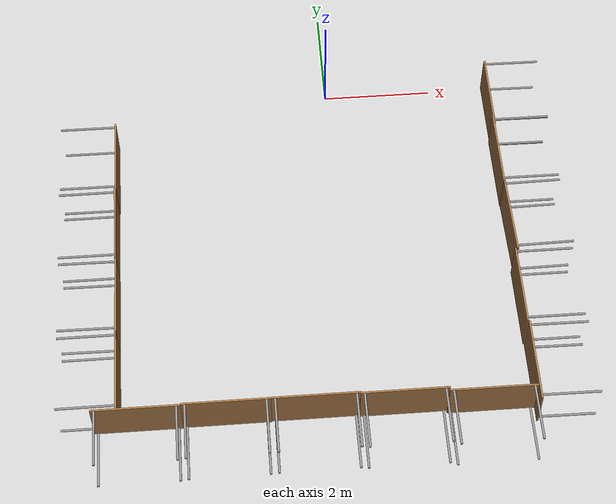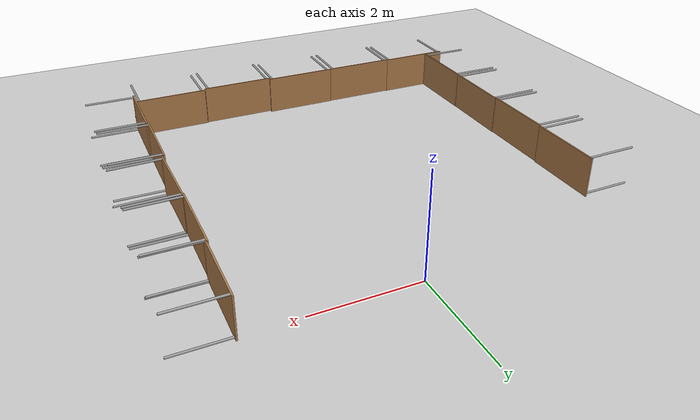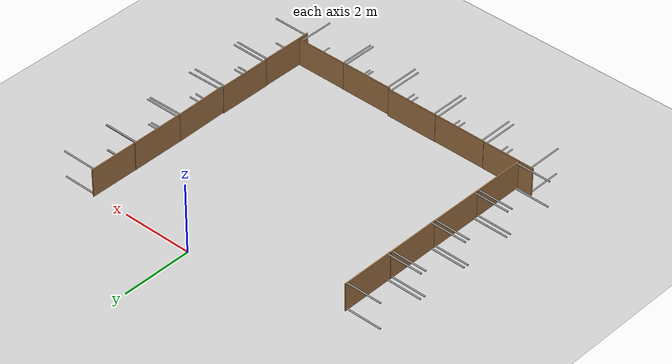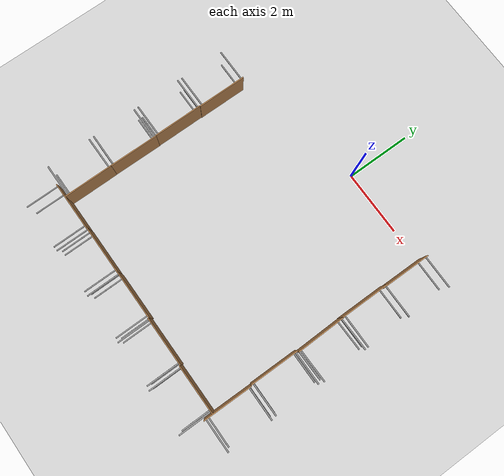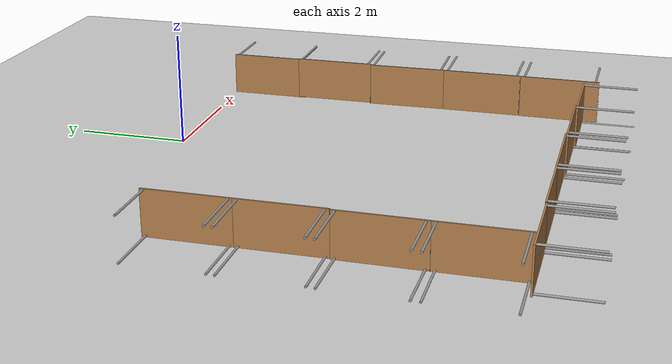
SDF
<sdf version="1.6">
 <world name="default">
  <model name="ground_plane">
   <static>1</static>
   <link name="link">
    <collision name="collision">
     <geometry><plane><normal>0 0 1</normal><size>100 100</size></plane></geometry>
     <surface><friction><ode><mu>100</mu><mu2>50</mu2></ode></friction></surface>
    </collision>
    <visual name="visual">
     <cast_shadows>0</cast_shadows>
     <geometry><plane><normal>0 0 1</normal><size>100 100</size></plane></geometry>
     <material>
      <script><uri>file://media/materials/scripts/gazebo.material</uri><name>Gazebo/Grey</name></script>
     </material>
    </visual>
    <velocity_decay><linear>0</linear><angular>0</angular></velocity_decay>
   </link>
  </model>
  <model name="table_8">
   <static>1</static>
   <link name="link">
    <collision name="surface">
     <pose>0 0 1 0 -0 0</pose>
     <geometry><box><size>1.5 0.8 0.03</size></box></geometry>
     <surface><friction><ode><mu>0.6</mu><mu2>0.6</mu2></ode></friction></surface>
    </collision>
    <visual name="visual1">
     <pose>0 0 1 0 -0 0</pose>
     <geometry><box><size>1.5 0.8 0.03</size></box></geometry>
     <material>
      <script><uri>file://media/materials/scripts/gazebo.material</uri><name>Gazebo/Wood</name></script>
     </material>
    </visual>
    <collision name="front_left_leg">
     <pose>0.68 0.38 0.5 0 -0 0</pose>
     <geometry><cylinder><radius>0.02</radius><length>1</length></cylinder></geometry>
    </collision>
    <visual name="front_left_leg">
     <pose>0.68 0.38 0.5 0 -0 0</pose>
     <geometry><cylinder><radius>0.02</radius><length>1</length></cylinder></geometry>
     <material>
      <script><uri>file://media/materials/scripts/gazebo.material</uri><name>Gazebo/Grey</name></script>
     </material>
    </visual>
    <collision name="front_right_leg">
     <pose>0.68 -0.38 0.5 0 -0 0</pose>
     <geometry><cylinder><radius>0.02</radius><length>1</length></cylinder></geometry>
    </collision>
    <visual name="front_right_leg">
     <pose>0.68 -0.38 0.5 0 -0 0</pose>
     <geometry><cylinder><radius>0.02</radius><length>1</length></cylinder></geometry>
     <material>
      <script><uri>file://media/materials/scripts/gazebo.material</uri><name>Gazebo/Grey</name></script>
     </material>
    </visual>
    <collision name="back_right_leg">
     <pose>-0.68 -0.38 0.5 0 -0 0</pose>
     <geometry><cylinder><radius>0.02</radius><length>1</length></cylinder></geometry>
    </collision>
    <visual name="back_right_leg">
     <pose>-0.68 -0.38 0.5 0 -0 0</pose>
     <geometry><cylinder><radius>0.02</radius><length>1</length></cylinder></geometry>
     <material>
      <script><uri>file://media/materials/scripts/gazebo.material</uri><name>Gazebo/Grey</name></script>
     </material>
    </visual>
    <collision name="back_left_leg">
     <pose>-0.68 0.38 0.5 0 -0 0</pose>
     <geometry><cylinder><radius>0.02</radius><length>1</length></cylinder></geometry>
    </collision>
    <visual name="back_left_leg">
     <pose>-0.68 0.38 0.5 0 -0 0</pose>
     <geometry><cylinder><radius>0.02</radius><length>1</length></cylinder></geometry>
     <material>
      <script><uri>file://media/materials/scripts/gazebo.material</uri><name>Gazebo/Grey</name></script>
     </material>
    </visual>
    <velocity_decay><linear>0</linear><angular>0</angular></velocity_decay>
   </link>
   <pose>4.04656 -0.698243 0.39274 1.5671 -6.2e-05 -1.57612</pose>
  </model>
  <model name="table_9">
   <static>1</static>
   <link name="link">
    <collision name="surface">
     <pose>0 0 1 0 -0 0</pose>
     <geometry><box><size>1.5 0.8 0.03</size></box></geometry>
     <surface><friction><ode><mu>0.6</mu><mu2>0.6</mu2></ode></friction></surface>
    </collision>
    <visual name="visual1">
     <pose>0 0 1 0 -0 0</pose>
     <geometry><box><size>1.5 0.8 0.03</size></box></geometry>
     <material>
      <script><uri>file://media/materials/scripts/gazebo.material</uri><name>Gazebo/Wood</name></script>
     </material>
    </visual>
    <collision name="front_left_leg">
     <pose>0.68 0.38 0.5 0 -0 0</pose>
     <geometry><cylinder><radius>0.02</radius><length>1</length></cylinder></geometry>
    </collision>
    <visual name="front_left_leg">
     <pose>0.68 0.38 0.5 0 -0 0</pose>
     <geometry><cylinder><radius>0.02</radius><length>1</length></cylinder></geometry>
     <material>
      <script><uri>file://media/materials/scripts/gazebo.material</uri><name>Gazebo/Grey</name></script>
     </material>
    </visual>
    <collision name="front_right_leg">
     <pose>0.68 -0.38 0.5 0 -0 0</pose>
     <geometry><cylinder><radius>0.02</radius><length>1</length></cylinder></geometry>
    </collision>
    <visual name="front_right_leg">
     <pose>0.68 -0.38 0.5 0 -0 0</pose>
     <geometry><cylinder><radius>0.02</radius><length>1</length></cylinder></geometry>
     <material>
      <script><uri>file://media/materials/scripts/gazebo.material</uri><name>Gazebo/Grey</name></script>
     </material>
    </visual>
    <collision name="back_right_leg">
     <pose>-0.68 -0.38 0.5 0 -0 0</pose>
     <geometry><cylinder><radius>0.02</radius><length>1</length></cylinder></geometry>
    </collision>
    <visual name="back_right_leg">
     <pose>-0.68 -0.38 0.5 0 -0 0</pose>
     <geometry><cylinder><radius>0.02</radius><length>1</length></cylinder></geometry>
     <material>
      <script><uri>file://media/materials/scripts/gazebo.material</uri><name>Gazebo/Grey</name></script>
     </material>
    </visual>
    <collision name="back_left_leg">
     <pose>-0.68 0.38 0.5 0 -0 0</pose>
     <geometry><cylinder><radius>0.02</radius><length>1</length></cylinder></geometry>
    </collision>
    <visual name="back_left_leg">
     <pose>-0.68 0.38 0.5 0 -0 0</pose>
     <geometry><cylinder><radius>0.02</radius><length>1</length></cylinder></geometry>
     <material>
      <script><uri>file://media/materials/scripts/gazebo.material</uri><name>Gazebo/Grey</name></script>
     </material>
    </visual>
    <velocity_decay><linear>0</linear><angular>0</angular></velocity_decay>
   </link>
   <pose>4.02468 -2.05884 0.410726 1.56766 -0 -1.57067</pose>
  </model>
  <model name="table_10">
   <static>1</static>
   <link name="link">
    <collision name="surface">
     <pose>0 0 1 0 -0 0</pose>
     <geometry><box><size>1.5 0.8 0.03</size></box></geometry>
     <surface><friction><ode><mu>0.6</mu><mu2>0.6</mu2></ode></friction></surface>
    </collision>
    <visual name="visual1">
     <pose>0 0 1 0 -0 0</pose>
     <geometry><box><size>1.5 0.8 0.03</size></box></geometry>
     <material>
      <script><uri>file://media/materials/scripts/gazebo.material</uri><name>Gazebo/Wood</name></script>
     </material>
    </visual>
    <collision name="front_left_leg">
     <pose>0.68 0.38 0.5 0 -0 0</pose>
     <geometry><cylinder><radius>0.02</radius><length>1</length></cylinder></geometry>
    </collision>
    <visual name="front_left_leg">
     <pose>0.68 0.38 0.5 0 -0 0</pose>
     <geometry><cylinder><radius>0.02</radius><length>1</length></cylinder></geometry>
     <material>
      <script><uri>file://media/materials/scripts/gazebo.material</uri><name>Gazebo/Grey</name></script>
     </material>
    </visual>
    <collision name="front_right_leg">
     <pose>0.68 -0.38 0.5 0 -0 0</pose>
     <geometry><cylinder><radius>0.02</radius><length>1</length></cylinder></geometry>
    </collision>
    <visual name="front_right_leg">
     <pose>0.68 -0.38 0.5 0 -0 0</pose>
     <geometry><cylinder><radius>0.02</radius><length>1</length></cylinder></geometry>
     <material>
      <script><uri>file://media/materials/scripts/gazebo.material</uri><name>Gazebo/Grey</name></script>
     </material>
    </visual>
    <collision name="back_right_leg">
     <pose>-0.68 -0.38 0.5 0 -0 0</pose>
     <geometry><cylinder><radius>0.02</radius><length>1</length></cylinder></geometry>
    </collision>
    <visual name="back_right_leg">
     <pose>-0.68 -0.38 0.5 0 -0 0</pose>
     <geometry><cylinder><radius>0.02</radius><length>1</length></cylinder></geometry>
     <material>
      <script><uri>file://media/materials/scripts/gazebo.material</uri><name>Gazebo/Grey</name></script>
     </material>
    </visual>
    <collision name="back_left_leg">
     <pose>-0.68 0.38 0.5 0 -0 0</pose>
     <geometry><cylinder><radius>0.02</radius><length>1</length></cylinder></geometry>
    </collision>
    <visual name="back_left_leg">
     <pose>-0.68 0.38 0.5 0 -0 0</pose>
     <geometry><cylinder><radius>0.02</radius><length>1</length></cylinder></geometry>
     <material>
      <script><uri>file://media/materials/scripts/gazebo.material</uri><name>Gazebo/Grey</name></script>
     </material>
    </visual>
    <velocity_decay><linear>0</linear><angular>0</angular></velocity_decay>
   </link>
   <pose>4.04909 -3.51998 0.39506 1.56955 -0 -1.55255</pose>
  </model>
  <model name="table_11">
   <static>1</static>
   <link name="link">
    <collision name="surface">
     <pose>0 0 1 0 -0 0</pose>
     <geometry><box><size>1.5 0.8 0.03</size></box></geometry>
     <surface><friction><ode><mu>0.6</mu><mu2>0.6</mu2></ode></friction></surface>
    </collision>
    <visual name="visual1">
     <pose>0 0 1 0 -0 0</pose>
     <geometry><box><size>1.5 0.8 0.03</size></box></geometry>
     <material>
      <script><uri>file://media/materials/scripts/gazebo.material</uri><name>Gazebo/Wood</name></script>
     </material>
    </visual>
    <collision name="front_left_leg">
     <pose>0.68 0.38 0.5 0 -0 0</pose>
     <geometry><cylinder><radius>0.02</radius><length>1</length></cylinder></geometry>
    </collision>
    <visual name="front_left_leg">
     <pose>0.68 0.38 0.5 0 -0 0</pose>
     <geometry><cylinder><radius>0.02</radius><length>1</length></cylinder></geometry>
     <material>
      <script><uri>file://media/materials/scripts/gazebo.material</uri><name>Gazebo/Grey</name></script>
     </material>
    </visual>
    <collision name="front_right_leg">
     <pose>0.68 -0.38 0.5 0 -0 0</pose>
     <geometry><cylinder><radius>0.02</radius><length>1</length></cylinder></geometry>
    </collision>
    <visual name="front_right_leg">
     <pose>0.68 -0.38 0.5 0 -0 0</pose>
     <geometry><cylinder><radius>0.02</radius><length>1</length></cylinder></geometry>
     <material>
      <script><uri>file://media/materials/scripts/gazebo.material</uri><name>Gazebo/Grey</name></script>
     </material>
    </visual>
    <collision name="back_right_leg">
     <pose>-0.68 -0.38 0.5 0 -0 0</pose>
     <geometry><cylinder><radius>0.02</radius><length>1</length></cylinder></geometry>
    </collision>
    <visual name="back_right_leg">
     <pose>-0.68 -0.38 0.5 0 -0 0</pose>
     <geometry><cylinder><radius>0.02</radius><length>1</length></cylinder></geometry>
     <material>
      <script><uri>file://media/materials/scripts/gazebo.material</uri><name>Gazebo/Grey</name></script>
     </material>
    </visual>
    <collision name="back_left_leg">
     <pose>-0.68 0.38 0.5 0 -0 0</pose>
     <geometry><cylinder><radius>0.02</radius><length>1</length></cylinder></geometry>
    </collision>
    <visual name="back_left_leg">
     <pose>-0.68 0.38 0.5 0 -0 0</pose>
     <geometry><cylinder><radius>0.02</radius><length>1</length></cylinder></geometry>
     <material>
      <script><uri>file://media/materials/scripts/gazebo.material</uri><name>Gazebo/Grey</name></script>
     </material>
    </visual>
    <velocity_decay><linear>0</linear><angular>0</angular></velocity_decay>
   </link>
   <pose>4.01779 -5.04411 0.415479 1.57516 -0 -1.57394</pose>
  </model>
  <model name="table_12">
   <static>1</static>
   <link name="link">
    <collision name="surface">
     <pose>0 0 1 0 -0 0</pose>
     <geometry><box><size>1.5 0.8 0.03</size></box></geometry>
     <surface><friction><ode><mu>0.6</mu><mu2>0.6</mu2></ode></friction></surface>
    </collision>
    <visual name="visual1">
     <pose>0 0 1 0 -0 0</pose>
     <geometry><box><size>1.5 0.8 0.03</size></box></geometry>
     <material>
      <script><uri>file://media/materials/scripts/gazebo.material</uri><name>Gazebo/Wood</name></script>
     </material>
    </visual>
    <collision name="front_left_leg">
     <pose>0.68 0.38 0.5 0 -0 0</pose>
     <geometry><cylinder><radius>0.02</radius><length>1</length></cylinder></geometry>
    </collision>
    <visual name="front_left_leg">
     <pose>0.68 0.38 0.5 0 -0 0</pose>
     <geometry><cylinder><radius>0.02</radius><length>1</length></cylinder></geometry>
     <material>
      <script><uri>file://media/materials/scripts/gazebo.material</uri><name>Gazebo/Grey</name></script>
     </material>
    </visual>
    <collision name="front_right_leg">
     <pose>0.68 -0.38 0.5 0 -0 0</pose>
     <geometry><cylinder><radius>0.02</radius><length>1</length></cylinder></geometry>
    </collision>
    <visual name="front_right_leg">
     <pose>0.68 -0.38 0.5 0 -0 0</pose>
     <geometry><cylinder><radius>0.02</radius><length>1</length></cylinder></geometry>
     <material>
      <script><uri>file://media/materials/scripts/gazebo.material</uri><name>Gazebo/Grey</name></script>
     </material>
    </visual>
    <collision name="back_right_leg">
     <pose>-0.68 -0.38 0.5 0 -0 0</pose>
     <geometry><cylinder><radius>0.02</radius><length>1</length></cylinder></geometry>
    </collision>
    <visual name="back_right_leg">
     <pose>-0.68 -0.38 0.5 0 -0 0</pose>
     <geometry><cylinder><radius>0.02</radius><length>1</length></cylinder></geometry>
     <material>
      <script><uri>file://media/materials/scripts/gazebo.material</uri><name>Gazebo/Grey</name></script>
     </material>
    </visual>
    <collision name="back_left_leg">
     <pose>-0.68 0.38 0.5 0 -0 0</pose>
     <geometry><cylinder><radius>0.02</radius><length>1</length></cylinder></geometry>
    </collision>
    <visual name="back_left_leg">
     <pose>-0.68 0.38 0.5 0 -0 0</pose>
     <geometry><cylinder><radius>0.02</radius><length>1</length></cylinder></geometry>
     <material>
      <script><uri>file://media/materials/scripts/gazebo.material</uri><name>Gazebo/Grey</name></script>
     </material>
    </visual>
    <velocity_decay><linear>0</linear><angular>0</angular></velocity_decay>
   </link>
   <pose>4.03351 -6.5551 0.399481 1.56946 -0 -1.57791</pose>
  </model>
  <model name="table_13">
   <static>1</static>
   <link name="link">
    <collision name="surface">
     <pose>0 0 1 0 -0 0</pose>
     <geometry><box><size>1.5 0.8 0.03</size></box></geometry>
     <surface><friction><ode><mu>0.6</mu><mu2>0.6</mu2></ode></friction></surface>
    </collision>
    <visual name="visual1">
     <pose>0 0 1 0 -0 0</pose>
     <geometry><box><size>1.5 0.8 0.03</size></box></geometry>
     <material>
      <script><uri>file://media/materials/scripts/gazebo.material</uri><name>Gazebo/Wood</name></script>
     </material>
    </visual>
    <collision name="front_left_leg">
     <pose>0.68 0.38 0.5 0 -0 0</pose>
     <geometry><cylinder><radius>0.02</radius><length>1</length></cylinder></geometry>
    </collision>
    <visual name="front_left_leg">
     <pose>0.68 0.38 0.5 0 -0 0</pose>
     <geometry><cylinder><radius>0.02</radius><length>1</length></cylinder></geometry>
     <material>
      <script><uri>file://media/materials/scripts/gazebo.material</uri><name>Gazebo/Grey</name></script>
     </material>
    </visual>
    <collision name="front_right_leg">
     <pose>0.68 -0.38 0.5 0 -0 0</pose>
     <geometry><cylinder><radius>0.02</radius><length>1</length></cylinder></geometry>
    </collision>
    <visual name="front_right_leg">
     <pose>0.68 -0.38 0.5 0 -0 0</pose>
     <geometry><cylinder><radius>0.02</radius><length>1</length></cylinder></geometry>
     <material>
      <script><uri>file://media/materials/scripts/gazebo.material</uri><name>Gazebo/Grey</name></script>
     </material>
    </visual>
    <collision name="back_right_leg">
     <pose>-0.68 -0.38 0.5 0 -0 0</pose>
     <geometry><cylinder><radius>0.02</radius><length>1</length></cylinder></geometry>
    </collision>
    <visual name="back_right_leg">
     <pose>-0.68 -0.38 0.5 0 -0 0</pose>
     <geometry><cylinder><radius>0.02</radius><length>1</length></cylinder></geometry>
     <material>
      <script><uri>file://media/materials/scripts/gazebo.material</uri><name>Gazebo/Grey</name></script>
     </material>
    </visual>
    <collision name="back_left_leg">
     <pose>-0.68 0.38 0.5 0 -0 0</pose>
     <geometry><cylinder><radius>0.02</radius><length>1</length></cylinder></geometry>
    </collision>
    <visual name="back_left_leg">
     <pose>-0.68 0.38 0.5 0 -0 0</pose>
     <geometry><cylinder><radius>0.02</radius><length>1</length></cylinder></geometry>
     <material>
      <script><uri>file://media/materials/scripts/gazebo.material</uri><name>Gazebo/Grey</name></script>
     </material>
    </visual>
    <velocity_decay><linear>0</linear><angular>0</angular></velocity_decay>
   </link>
   <pose>2.27189 -8.01711 0.366105 -1.56669 0.003542 1.5e-05</pose>
  </model>
  <model name="table_14">
   <static>1</static>
   <link name="link">
    <collision name="surface">
     <pose>0 0 1 0 -0 0</pose>
     <geometry><box><size>1.5 0.8 0.03</size></box></geometry>
     <surface><friction><ode><mu>0.6</mu><mu2>0.6</mu2></ode></friction></surface>
    </collision>
    <visual name="visual1">
     <pose>0 0 1 0 -0 0</pose>
     <geometry><box><size>1.5 0.8 0.03</size></box></geometry>
     <material>
      <script><uri>file://media/materials/scripts/gazebo.material</uri><name>Gazebo/Wood</name></script>
     </material>
    </visual>
    <collision name="front_left_leg">
     <pose>0.68 0.38 0.5 0 -0 0</pose>
     <geometry><cylinder><radius>0.02</radius><length>1</length></cylinder></geometry>
    </collision>
    <visual name="front_left_leg">
     <pose>0.68 0.38 0.5 0 -0 0</pose>
     <geometry><cylinder><radius>0.02</radius><length>1</length></cylinder></geometry>
     <material>
      <script><uri>file://media/materials/scripts/gazebo.material</uri><name>Gazebo/Grey</name></script>
     </material>
    </visual>
    <collision name="front_right_leg">
     <pose>0.68 -0.38 0.5 0 -0 0</pose>
     <geometry><cylinder><radius>0.02</radius><length>1</length></cylinder></geometry>
    </collision>
    <visual name="front_right_leg">
     <pose>0.68 -0.38 0.5 0 -0 0</pose>
     <geometry><cylinder><radius>0.02</radius><length>1</length></cylinder></geometry>
     <material>
      <script><uri>file://media/materials/scripts/gazebo.material</uri><name>Gazebo/Grey</name></script>
     </material>
    </visual>
    <collision name="back_right_leg">
     <pose>-0.68 -0.38 0.5 0 -0 0</pose>
     <geometry><cylinder><radius>0.02</radius><length>1</length></cylinder></geometry>
    </collision>
    <visual name="back_right_leg">
     <pose>-0.68 -0.38 0.5 0 -0 0</pose>
     <geometry><cylinder><radius>0.02</radius><length>1</length></cylinder></geometry>
     <material>
      <script><uri>file://media/materials/scripts/gazebo.material</uri><name>Gazebo/Grey</name></script>
     </material>
    </visual>
    <collision name="back_left_leg">
     <pose>-0.68 0.38 0.5 0 -0 0</pose>
     <geometry><cylinder><radius>0.02</radius><length>1</length></cylinder></geometry>
    </collision>
    <visual name="back_left_leg">
     <pose>-0.68 0.38 0.5 0 -0 0</pose>
     <geometry><cylinder><radius>0.02</radius><length>1</length></cylinder></geometry>
     <material>
      <script><uri>file://media/materials/scripts/gazebo.material</uri><name>Gazebo/Grey</name></script>
     </material>
    </visual>
    <velocity_decay><linear>0</linear><angular>0</angular></velocity_decay>
   </link>
   <pose>0.784446 -7.98443 0.413388 -1.56889 0 0</pose>
  </model>
  <model name="table_15">
   <static>1</static>
   <link name="link">
    <collision name="surface">
     <pose>0 0 1 0 -0 0</pose>
     <geometry><box><size>1.5 0.8 0.03</size></box></geometry>
     <surface><friction><ode><mu>0.6</mu><mu2>0.6</mu2></ode></friction></surface>
    </collision>
    <visual name="visual1">
     <pose>0 0 1 0 -0 0</pose>
     <geometry><box><size>1.5 0.8 0.03</size></box></geometry>
     <material>
      <script><uri>file://media/materials/scripts/gazebo.material</uri><name>Gazebo/Wood</name></script>
     </material>
    </visual>
    <collision name="front_left_leg">
     <pose>0.68 0.38 0.5 0 -0 0</pose>
     <geometry><cylinder><radius>0.02</radius><length>1</length></cylinder></geometry>
    </collision>
    <visual name="front_left_leg">
     <pose>0.68 0.38 0.5 0 -0 0</pose>
     <geometry><cylinder><radius>0.02</radius><length>1</length></cylinder></geometry>
     <material>
      <script><uri>file://media/materials/scripts/gazebo.material</uri><name>Gazebo/Grey</name></script>
     </material>
    </visual>
    <collision name="front_right_leg">
     <pose>0.68 -0.38 0.5 0 -0 0</pose>
     <geometry><cylinder><radius>0.02</radius><length>1</length></cylinder></geometry>
    </collision>
    <visual name="front_right_leg">
     <pose>0.68 -0.38 0.5 0 -0 0</pose>
     <geometry><cylinder><radius>0.02</radius><length>1</length></cylinder></geometry>
     <material>
      <script><uri>file://media/materials/scripts/gazebo.material</uri><name>Gazebo/Grey</name></script>
     </material>
    </visual>
    <collision name="back_right_leg">
     <pose>-0.68 -0.38 0.5 0 -0 0</pose>
     <geometry><cylinder><radius>0.02</radius><length>1</length></cylinder></geometry>
    </collision>
    <visual name="back_right_leg">
     <pose>-0.68 -0.38 0.5 0 -0 0</pose>
     <geometry><cylinder><radius>0.02</radius><length>1</length></cylinder></geometry>
     <material>
      <script><uri>file://media/materials/scripts/gazebo.material</uri><name>Gazebo/Grey</name></script>
     </material>
    </visual>
    <collision name="back_left_leg">
     <pose>-0.68 0.38 0.5 0 -0 0</pose>
     <geometry><cylinder><radius>0.02</radius><length>1</length></cylinder></geometry>
    </collision>
    <visual name="back_left_leg">
     <pose>-0.68 0.38 0.5 0 -0 0</pose>
     <geometry><cylinder><radius>0.02</radius><length>1</length></cylinder></geometry>
     <material>
      <script><uri>file://media/materials/scripts/gazebo.material</uri><name>Gazebo/Grey</name></script>
     </material>
    </visual>
    <velocity_decay><linear>0</linear><angular>0</angular></velocity_decay>
   </link>
   <pose>-0.704425 -7.95797 0.394985 -1.56648 0 0</pose>
  </model>
  <model name="table_16">
   <static>1</static>
   <link name="link">
    <collision name="surface">
     <pose>0 0 1 0 -0 0</pose>
     <geometry><box><size>1.5 0.8 0.03</size></box></geometry>
     <surface><friction><ode><mu>0.6</mu><mu2>0.6</mu2></ode></friction></surface>
    </collision>
    <visual name="visual1">
     <pose>0 0 1 0 -0 0</pose>
     <geometry><box><size>1.5 0.8 0.03</size></box></geometry>
     <material>
      <script><uri>file://media/materials/scripts/gazebo.material</uri><name>Gazebo/Wood</name></script>
     </material>
    </visual>
    <collision name="front_left_leg">
     <pose>0.68 0.38 0.5 0 -0 0</pose>
     <geometry><cylinder><radius>0.02</radius><length>1</length></cylinder></geometry>
    </collision>
    <visual name="front_left_leg">
     <pose>0.68 0.38 0.5 0 -0 0</pose>
     <geometry><cylinder><radius>0.02</radius><length>1</length></cylinder></geometry>
     <material>
      <script><uri>file://media/materials/scripts/gazebo.material</uri><name>Gazebo/Grey</name></script>
     </material>
    </visual>
    <collision name="front_right_leg">
     <pose>0.68 -0.38 0.5 0 -0 0</pose>
     <geometry><cylinder><radius>0.02</radius><length>1</length></cylinder></geometry>
    </collision>
    <visual name="front_right_leg">
     <pose>0.68 -0.38 0.5 0 -0 0</pose>
     <geometry><cylinder><radius>0.02</radius><length>1</length></cylinder></geometry>
     <material>
      <script><uri>file://media/materials/scripts/gazebo.material</uri><name>Gazebo/Grey</name></script>
     </material>
    </visual>
    <collision name="back_right_leg">
     <pose>-0.68 -0.38 0.5 0 -0 0</pose>
     <geometry><cylinder><radius>0.02</radius><length>1</length></cylinder></geometry>
    </collision>
    <visual name="back_right_leg">
     <pose>-0.68 -0.38 0.5 0 -0 0</pose>
     <geometry><cylinder><radius>0.02</radius><length>1</length></cylinder></geometry>
     <material>
      <script><uri>file://media/materials/scripts/gazebo.material</uri><name>Gazebo/Grey</name></script>
     </material>
    </visual>
    <collision name="back_left_leg">
     <pose>-0.68 0.38 0.5 0 -0 0</pose>
     <geometry><cylinder><radius>0.02</radius><length>1</length></cylinder></geometry>
    </collision>
    <visual name="back_left_leg">
     <pose>-0.68 0.38 0.5 0 -0 0</pose>
     <geometry><cylinder><radius>0.02</radius><length>1</length></cylinder></geometry>
     <material>
      <script><uri>file://media/materials/scripts/gazebo.material</uri><name>Gazebo/Grey</name></script>
     </material>
    </visual>
    <velocity_decay><linear>0</linear><angular>0</angular></velocity_decay>
   </link>
   <pose>-2.20567 -7.96485 0.402156 -1.57426 0 0</pose>
  </model>
  <model name="table_17">
   <static>1</static>
   <link name="link">
    <collision name="surface">
     <pose>0 0 1 0 -0 0</pose>
     <geometry><box><size>1.5 0.8 0.03</size></box></geometry>
     <surface><friction><ode><mu>0.6</mu><mu2>0.6</mu2></ode></friction></surface>
    </collision>
    <visual name="visual1">
     <pose>0 0 1 0 -0 0</pose>
     <geometry><box><size>1.5 0.8 0.03</size></box></geometry>
     <material>
      <script><uri>file://media/materials/scripts/gazebo.material</uri><name>Gazebo/Wood</name></script>
     </material>
    </visual>
    <collision name="front_left_leg">
     <pose>0.68 0.38 0.5 0 -0 0</pose>
     <geometry><cylinder><radius>0.02</radius><length>1</length></cylinder></geometry>
    </collision>
    <visual name="front_left_leg">
     <pose>0.68 0.38 0.5 0 -0 0</pose>
     <geometry><cylinder><radius>0.02</radius><length>1</length></cylinder></geometry>
     <material>
      <script><uri>file://media/materials/scripts/gazebo.material</uri><name>Gazebo/Grey</name></script>
     </material>
    </visual>
    <collision name="front_right_leg">
     <pose>0.68 -0.38 0.5 0 -0 0</pose>
     <geometry><cylinder><radius>0.02</radius><length>1</length></cylinder></geometry>
    </collision>
    <visual name="front_right_leg">
     <pose>0.68 -0.38 0.5 0 -0 0</pose>
     <geometry><cylinder><radius>0.02</radius><length>1</length></cylinder></geometry>
     <material>
      <script><uri>file://media/materials/scripts/gazebo.material</uri><name>Gazebo/Grey</name></script>
     </material>
    </visual>
    <collision name="back_right_leg">
     <pose>-0.68 -0.38 0.5 0 -0 0</pose>
     <geometry><cylinder><radius>0.02</radius><length>1</length></cylinder></geometry>
    </collision>
    <visual name="back_right_leg">
     <pose>-0.68 -0.38 0.5 0 -0 0</pose>
     <geometry><cylinder><radius>0.02</radius><length>1</length></cylinder></geometry>
     <material>
      <script><uri>file://media/materials/scripts/gazebo.material</uri><name>Gazebo/Grey</name></script>
     </material>
    </visual>
    <collision name="back_left_leg">
     <pose>-0.68 0.38 0.5 0 -0 0</pose>
     <geometry><cylinder><radius>0.02</radius><length>1</length></cylinder></geometry>
    </collision>
    <visual name="back_left_leg">
     <pose>-0.68 0.38 0.5 0 -0 0</pose>
     <geometry><cylinder><radius>0.02</radius><length>1</length></cylinder></geometry>
     <material>
      <script><uri>file://media/materials/scripts/gazebo.material</uri><name>Gazebo/Grey</name></script>
     </material>
    </visual>
    <velocity_decay><linear>0</linear><angular>0</angular></velocity_decay>
   </link>
   <pose>-3.70229 -7.97253 0.38403 -1.56895 0 0</pose>
  </model>
  <model name="table_18">
   <static>1</static>
   <link name="link">
    <collision name="surface">
     <pose>0 0 1 0 -0 0</pose>
     <geometry><box><size>1.5 0.8 0.03</size></box></geometry>
     <surface><friction><ode><mu>0.6</mu><mu2>0.6</mu2></ode></friction></surface>
    </collision>
    <visual name="visual1">
     <pose>0 0 1 0 -0 0</pose>
     <geometry><box><size>1.5 0.8 0.03</size></box></geometry>
     <material>
      <script><uri>file://media/materials/scripts/gazebo.material</uri><name>Gazebo/Wood</name></script>
     </material>
    </visual>
    <collision name="front_left_leg">
     <pose>0.68 0.38 0.5 0 -0 0</pose>
     <geometry><cylinder><radius>0.02</radius><length>1</length></cylinder></geometry>
    </collision>
    <visual name="front_left_leg">
     <pose>0.68 0.38 0.5 0 -0 0</pose>
     <geometry><cylinder><radius>0.02</radius><length>1</length></cylinder></geometry>
     <material>
      <script><uri>file://media/materials/scripts/gazebo.material</uri><name>Gazebo/Grey</name></script>
     </material>
    </visual>
    <collision name="front_right_leg">
     <pose>0.68 -0.38 0.5 0 -0 0</pose>
     <geometry><cylinder><radius>0.02</radius><length>1</length></cylinder></geometry>
    </collision>
    <visual name="front_right_leg">
     <pose>0.68 -0.38 0.5 0 -0 0</pose>
     <geometry><cylinder><radius>0.02</radius><length>1</length></cylinder></geometry>
     <material>
      <script><uri>file://media/materials/scripts/gazebo.material</uri><name>Gazebo/Grey</name></script>
     </material>
    </visual>
    <collision name="back_right_leg">
     <pose>-0.68 -0.38 0.5 0 -0 0</pose>
     <geometry><cylinder><radius>0.02</radius><length>1</length></cylinder></geometry>
    </collision>
    <visual name="back_right_leg">
     <pose>-0.68 -0.38 0.5 0 -0 0</pose>
     <geometry><cylinder><radius>0.02</radius><length>1</length></cylinder></geometry>
     <material>
      <script><uri>file://media/materials/scripts/gazebo.material</uri><name>Gazebo/Grey</name></script>
     </material>
    </visual>
    <collision name="back_left_leg">
     <pose>-0.68 0.38 0.5 0 -0 0</pose>
     <geometry><cylinder><radius>0.02</radius><length>1</length></cylinder></geometry>
    </collision>
    <visual name="back_left_leg">
     <pose>-0.68 0.38 0.5 0 -0 0</pose>
     <geometry><cylinder><radius>0.02</radius><length>1</length></cylinder></geometry>
     <material>
      <script><uri>file://media/materials/scripts/gazebo.material</uri><name>Gazebo/Grey</name></script>
     </material>
    </visual>
    <velocity_decay><linear>0</linear><angular>0</angular></velocity_decay>
   </link>
   <pose>-5.0211 -6.21216 0.379302 1.5661 6.4e-05 1.57028</pose>
  </model>
  <model name="table_19">
   <static>1</static>
   <link name="link">
    <collision name="surface">
     <pose>0 0 1 0 -0 0</pose>
     <geometry><box><size>1.5 0.8 0.03</size></box></geometry>
     <surface><friction><ode><mu>0.6</mu><mu2>0.6</mu2></ode></friction></surface>
    </collision>
    <visual name="visual1">
     <pose>0 0 1 0 -0 0</pose>
     <geometry><box><size>1.5 0.8 0.03</size></box></geometry>
     <material>
      <script><uri>file://media/materials/scripts/gazebo.material</uri><name>Gazebo/Wood</name></script>
     </material>
    </visual>
    <collision name="front_left_leg">
     <pose>0.68 0.38 0.5 0 -0 0</pose>
     <geometry><cylinder><radius>0.02</radius><length>1</length></cylinder></geometry>
    </collision>
    <visual name="front_left_leg">
     <pose>0.68 0.38 0.5 0 -0 0</pose>
     <geometry><cylinder><radius>0.02</radius><length>1</length></cylinder></geometry>
     <material>
      <script><uri>file://media/materials/scripts/gazebo.material</uri><name>Gazebo/Grey</name></script>
     </material>
    </visual>
    <collision name="front_right_leg">
     <pose>0.68 -0.38 0.5 0 -0 0</pose>
     <geometry><cylinder><radius>0.02</radius><length>1</length></cylinder></geometry>
    </collision>
    <visual name="front_right_leg">
     <pose>0.68 -0.38 0.5 0 -0 0</pose>
     <geometry><cylinder><radius>0.02</radius><length>1</length></cylinder></geometry>
     <material>
      <script><uri>file://media/materials/scripts/gazebo.material</uri><name>Gazebo/Grey</name></script>
     </material>
    </visual>
    <collision name="back_right_leg">
     <pose>-0.68 -0.38 0.5 0 -0 0</pose>
     <geometry><cylinder><radius>0.02</radius><length>1</length></cylinder></geometry>
    </collision>
    <visual name="back_right_leg">
     <pose>-0.68 -0.38 0.5 0 -0 0</pose>
     <geometry><cylinder><radius>0.02</radius><length>1</length></cylinder></geometry>
     <material>
      <script><uri>file://media/materials/scripts/gazebo.material</uri><name>Gazebo/Grey</name></script>
     </material>
    </visual>
    <collision name="back_left_leg">
     <pose>-0.68 0.38 0.5 0 -0 0</pose>
     <geometry><cylinder><radius>0.02</radius><length>1</length></cylinder></geometry>
    </collision>
    <visual name="back_left_leg">
     <pose>-0.68 0.38 0.5 0 -0 0</pose>
     <geometry><cylinder><radius>0.02</radius><length>1</length></cylinder></geometry>
     <material>
      <script><uri>file://media/materials/scripts/gazebo.material</uri><name>Gazebo/Grey</name></script>
     </material>
    </visual>
    <velocity_decay><linear>0</linear><angular>0</angular></velocity_decay>
   </link>
   <pose>-5.01716 -4.70505 0.388077 1.57506 8.5e-05 1.56417</pose>
  </model>
  <model name="table_20">
   <static>1</static>
   <link name="link">
    <collision name="surface">
     <pose>0 0 1 0 -0 0</pose>
     <geometry><box><size>1.5 0.8 0.03</size></box></geometry>
     <surface><friction><ode><mu>0.6</mu><mu2>0.6</mu2></ode></friction></surface>
    </collision>
    <visual name="visual1">
     <pose>0 0 1 0 -0 0</pose>
     <geometry><box><size>1.5 0.8 0.03</size></box></geometry>
     <material>
      <script><uri>file://media/materials/scripts/gazebo.material</uri><name>Gazebo/Wood</name></script>
     </material>
    </visual>
    <collision name="front_left_leg">
     <pose>0.68 0.38 0.5 0 -0 0</pose>
     <geometry><cylinder><radius>0.02</radius><length>1</length></cylinder></geometry>
    </collision>
    <visual name="front_left_leg">
     <pose>0.68 0.38 0.5 0 -0 0</pose>
     <geometry><cylinder><radius>0.02</radius><length>1</length></cylinder></geometry>
     <material>
      <script><uri>file://media/materials/scripts/gazebo.material</uri><name>Gazebo/Grey</name></script>
     </material>
    </visual>
    <collision name="front_right_leg">
     <pose>0.68 -0.38 0.5 0 -0 0</pose>
     <geometry><cylinder><radius>0.02</radius><length>1</length></cylinder></geometry>
    </collision>
    <visual name="front_right_leg">
     <pose>0.68 -0.38 0.5 0 -0 0</pose>
     <geometry><cylinder><radius>0.02</radius><length>1</length></cylinder></geometry>
     <material>
      <script><uri>file://media/materials/scripts/gazebo.material</uri><name>Gazebo/Grey</name></script>
     </material>
    </visual>
    <collision name="back_right_leg">
     <pose>-0.68 -0.38 0.5 0 -0 0</pose>
     <geometry><cylinder><radius>0.02</radius><length>1</length></cylinder></geometry>
    </collision>
    <visual name="back_right_leg">
     <pose>-0.68 -0.38 0.5 0 -0 0</pose>
     <geometry><cylinder><radius>0.02</radius><length>1</length></cylinder></geometry>
     <material>
      <script><uri>file://media/materials/scripts/gazebo.material</uri><name>Gazebo/Grey</name></script>
     </material>
    </visual>
    <collision name="back_left_leg">
     <pose>-0.68 0.38 0.5 0 -0 0</pose>
     <geometry><cylinder><radius>0.02</radius><length>1</length></cylinder></geometry>
    </collision>
    <visual name="back_left_leg">
     <pose>-0.68 0.38 0.5 0 -0 0</pose>
     <geometry><cylinder><radius>0.02</radius><length>1</length></cylinder></geometry>
     <material>
      <script><uri>file://media/materials/scripts/gazebo.material</uri><name>Gazebo/Grey</name></script>
     </material>
    </visual>
    <velocity_decay><linear>0</linear><angular>0</angular></velocity_decay>
   </link>
   <pose>-5.01654 -3.20971 0.39606 1.56895 2e-05 1.57067</pose>
  </model>
  <model name="table_21">
   <static>1</static>
   <link name="link">
    <collision name="surface">
     <pose>0 0 1 0 -0 0</pose>
     <geometry><box><size>1.5 0.8 0.03</size></box></geometry>
     <surface><friction><ode><mu>0.6</mu><mu2>0.6</mu2></ode></friction></surface>
    </collision>
    <visual name="visual1">
     <pose>0 0 1 0 -0 0</pose>
     <geometry><box><size>1.5 0.8 0.03</size></box></geometry>
     <material>
      <script><uri>file://media/materials/scripts/gazebo.material</uri><name>Gazebo/Wood</name></script>
     </material>
    </visual>
    <collision name="front_left_leg">
     <pose>0.68 0.38 0.5 0 -0 0</pose>
     <geometry><cylinder><radius>0.02</radius><length>1</length></cylinder></geometry>
    </collision>
    <visual name="front_left_leg">
     <pose>0.68 0.38 0.5 0 -0 0</pose>
     <geometry><cylinder><radius>0.02</radius><length>1</length></cylinder></geometry>
     <material>
      <script><uri>file://media/materials/scripts/gazebo.material</uri><name>Gazebo/Grey</name></script>
     </material>
    </visual>
    <collision name="front_right_leg">
     <pose>0.68 -0.38 0.5 0 -0 0</pose>
     <geometry><cylinder><radius>0.02</radius><length>1</length></cylinder></geometry>
    </collision>
    <visual name="front_right_leg">
     <pose>0.68 -0.38 0.5 0 -0 0</pose>
     <geometry><cylinder><radius>0.02</radius><length>1</length></cylinder></geometry>
     <material>
      <script><uri>file://media/materials/scripts/gazebo.material</uri><name>Gazebo/Grey</name></script>
     </material>
    </visual>
    <collision name="back_right_leg">
     <pose>-0.68 -0.38 0.5 0 -0 0</pose>
     <geometry><cylinder><radius>0.02</radius><length>1</length></cylinder></geometry>
    </collision>
    <visual name="back_right_leg">
     <pose>-0.68 -0.38 0.5 0 -0 0</pose>
     <geometry><cylinder><radius>0.02</radius><length>1</length></cylinder></geometry>
     <material>
      <script><uri>file://media/materials/scripts/gazebo.material</uri><name>Gazebo/Grey</name></script>
     </material>
    </visual>
    <collision name="back_left_leg">
     <pose>-0.68 0.38 0.5 0 -0 0</pose>
     <geometry><cylinder><radius>0.02</radius><length>1</length></cylinder></geometry>
    </collision>
    <visual name="back_left_leg">
     <pose>-0.68 0.38 0.5 0 -0 0</pose>
     <geometry><cylinder><radius>0.02</radius><length>1</length></cylinder></geometry>
     <material>
      <script><uri>file://media/materials/scripts/gazebo.material</uri><name>Gazebo/Grey</name></script>
     </material>
    </visual>
    <velocity_decay><linear>0</linear><angular>0</angular></velocity_decay>
   </link>
   <pose>-5.00469 -1.71219 0.394164 1.57272 1.8e-05 1.56974</pose>
  </model>
 </world>
</sdf>
